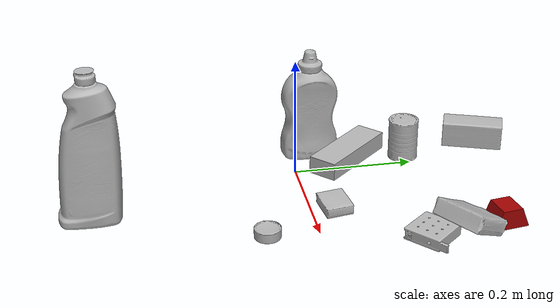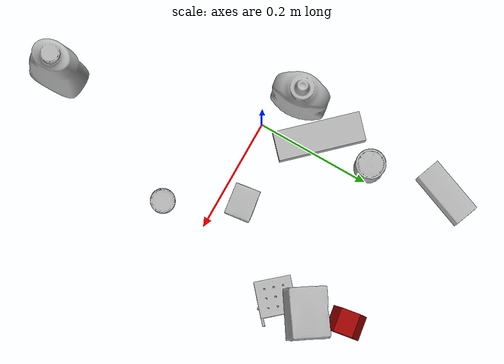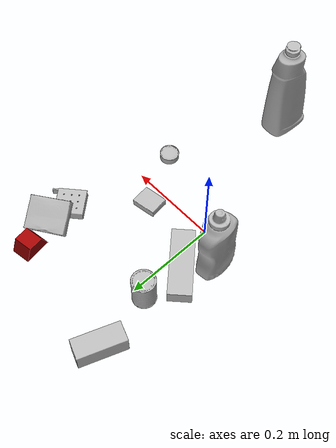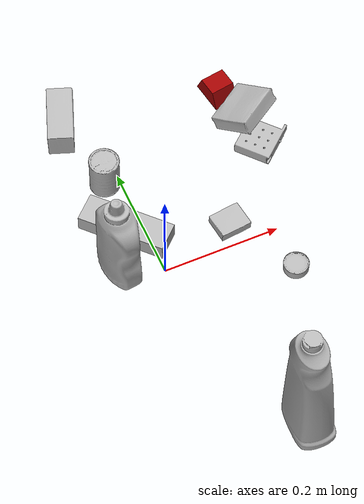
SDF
<sdf version="1.4">
  <world name="default">
    <light name="light1" type="point">
      <pose>0 0 1 0 0 0</pose>
      <diffuse>3 3 3 1</diffuse>
      <specular>3 3 3 1</specular>
    </light>
    <light name="light2" type="point">
      <pose>0 0.5 2 0 0 0</pose>
      <diffuse>1 1 1 1</diffuse>
      <specular>1 1 1 1</specular>
    </light>
    <light name="light3" type="point">
      <pose>0 0.5 2 0 0 0</pose>
      <diffuse>3 3 3 1</diffuse>
      <specular>3 3 3 1</specular>
    </light>
    <scene>
      <ambient>0.7 0.7 0.7</ambient>
    </scene>
    <model name="bottle1">
      <link name="link_bottle1">
        <collision name="default">
          <geometry>
            <mesh>
              <uri>model://mustard_bottle/collision_meshes/collision.obj</uri>
              <scale>1.0 1.0 1.0</scale>
            </mesh>
          </geometry>
          <surface>
            <friction>
              <ode>
                <mu>0.5</mu>
                <mu2>0.5</mu2>
              </ode>
            </friction>
          <contact>
        <ode>
            <max_vel>0</max_vel>
            <min_depth>0.0001</min_depth>
            <kp>1e8</kp>
        </ode>
    </contact></surface>
        </collision>
        <visual name="default">
          <geometry>
            <mesh>
              <uri>model://mustard_bottle/visual_meshes/visual.dae</uri>
              <scale>1.0 1.0 1.0</scale>
            </mesh>
          </geometry>
        </visual>
        <inertial>
          <mass>0.6762011647224426</mass>
          <pose>0.0005032454500906169 -0.00015647402324248105 -0.0174757931381464 0.0004182330054410876 0.0009465793907204819 0.02485376893997312</pose>
          <inertia>
            <ixx>0.001877718</ixx>
            <iyy>0.0016475386</iyy>
            <izz>0.0004948735</izz>
            <ixy>0</ixy>
            <ixz>0</ixz>
            <iyz>0</iyz>
          </inertia>
        </inertial>
      </link>
      <pose>-0.06623859703540802 0.03632136434316635 0.09583088755607605 -0.012050455536875048 -0.004889908046442219 0.10854078324993867</pose>
    </model>
    <model name="bottle2">
      <link name="link_bottle2">
        <collision name="default">
          <geometry>
            <mesh>
              <uri>model://bleach_cleanser/collision_meshes/collision.obj</uri>
              <scale>1.0 1.0 1.0</scale>
            </mesh>
          </geometry>
          <surface>
            <friction>
              <ode>
                <mu>0.5</mu>
                <mu2>0.5</mu2>
              </ode>
            </friction>
          <contact>
        <ode>
            <max_vel>0</max_vel>
            <min_depth>0.0001</min_depth>
            <kp>1e8</kp>
        </ode>
    </contact></surface>
        </collision>
        <visual name="default">
          <geometry>
            <mesh>
              <uri>model://bleach_cleanser/visual_meshes/visual.dae</uri>
              <scale>1.0 1.0 1.0</scale>
            </mesh>
          </geometry>
        </visual>
        <inertial>
          <mass>1.3947629928588867</mass>
          <pose>0.00012193183647468686 0.0037838828284293413 -0.02442161738872528 -0.07381670616230765 0.000420115363335565 -0.006875068774372656</pose>
          <inertia>
            <ixx>0.0067885136</ixx>
            <iyy>0.006325901</iyy>
            <izz>0.0011606595</izz>
            <ixy>0</ixy>
            <ixz>0</ixz>
            <iyz>0</iyz>
          </inertia>
        </inertial>
      </link>
      <pose>0.0926600769162178 -0.3404666483402252 0.12578415870666504 -0.00019979194843676323 1.6870971717525854e-05 -0.01908757723558795</pose>
    </model>
    <model name="toy1">
      <link name="link_toy1">
        <collision name="default">
          <geometry>
            <mesh>
              <uri>model://nine_hole_peg_test/collision_meshes/collision.obj</uri>
              <scale>0.5 0.5 0.5</scale>
            </mesh>
          </geometry>
          <surface>
            <friction>
              <ode>
                <mu>0.5</mu>
                <mu2>0.5</mu2>
              </ode>
            </friction>
          <contact>
        <ode>
            <max_vel>0</max_vel>
            <min_depth>0.0001</min_depth>
            <kp>1e8</kp>
        </ode>
    </contact></surface>
        </collision>
        <visual name="default">
          <geometry>
            <mesh>
              <uri>model://nine_hole_peg_test/visual_meshes/visual.dae</uri>
              <scale>0.5 0.5 0.5</scale>
            </mesh>
          </geometry>
        </visual>
        <inertial>
          <mass>0.11556825786828995</mass>
          <pose>-0.0023086932487785816 -0.004823807626962662 1.3230343029135838e-05 -0.0014666797633517714 0.0007194158879745651 -0.6342419016734399</pose>
          <inertia>
            <ixx>4.5177487e-05</ixx>
            <iyy>4.2181746e-05</iyy>
            <izz>7.9164296e-05</izz>
            <ixy>0</ixy>
            <ixz>0</ixz>
            <iyz>0</iyz>
          </inertia>
        </inertial>
      </link>
      <pose>0.24885007739067078 0.16573257744312286 0.010386030189692974 -2.8008369363469484e-05 -6.9041297381515086e-06 -0.8507946891102821</pose>
    </model>
    <model name="toy2">
      <link name="link_toy2">
        <collision name="default">
          <geometry>
            <mesh>
              <uri>model://prism/collision_meshes/collision.obj</uri>
              <scale>0.5 0.5 0.5</scale>
            </mesh>
          </geometry>
          <surface>
            <friction>
              <ode>
                <mu>0.5</mu>
                <mu2>0.5</mu2>
              </ode>
            </friction>
          <contact>
        <ode>
            <max_vel>0</max_vel>
            <min_depth>0.0001</min_depth>
            <kp>1e8</kp>
        </ode>
    </contact></surface>
        </collision>
        <visual name="default">
          <geometry>
            <mesh>
              <uri>model://prism/visual_meshes/visual.dae</uri>
              <scale>0.5 0.5 0.5</scale>
            </mesh>
          </geometry>
        </visual>
        <inertial>
          <mass>0.033433690667152405</mass>
          <pose>-4.9267986469203606e-05 -2.480786349678965e-07 -0.001693455153144896 0.0 0.00655918030046738 0.0</pose>
          <inertia>
            <ixx>7.543374e-06</ixx>
            <iyy>9.116264e-06</iyy>
            <izz>1.1166334e-05</izz>
            <ixy>0</ixy>
            <ixz>0</ixz>
            <iyz>0</iyz>
          </inertia>
        </inertial>
      </link>
      <pose>0.22229990363121033 0.28906649351119995 0.01608497090637684 3.557934544638975e-06 -1.4512866784811982e-05 -1.4140076998262208</pose>
    </model>
    <model name="can1">
      <link name="link_can1">
        <collision name="default">
          <geometry>
            <mesh>
              <uri>model://master_chef_can/collision_meshes/collision.obj</uri>
              <scale>0.5 0.5 0.5</scale>
            </mesh>
          </geometry>
          <surface>
            <friction>
              <ode>
                <mu>0.5</mu>
                <mu2>0.5</mu2>
              </ode>
            </friction>
          <contact>
        <ode>
            <max_vel>0</max_vel>
            <min_depth>0.0001</min_depth>
            <kp>1e8</kp>
        </ode>
    </contact></surface>
        </collision>
        <visual name="default">
          <geometry>
            <mesh>
              <uri>model://master_chef_can/visual_meshes/visual.dae</uri>
              <scale>0.5 0.5 0.5</scale>
            </mesh>
          </geometry>
        </visual>
        <inertial>
          <mass>0.10766725987195969</mass>
          <pose>-4.661964703700505e-05 1.3926853625889635e-07 -5.079878610558808e-05 -0.0017995160150511523 0.000647916474058074 -0.6102670332280266</pose>
          <inertia>
            <ixx>6.319339e-05</ixx>
            <iyy>6.2728286e-05</iyy>
            <izz>3.491918e-05</izz>
            <ixy>0</ixy>
            <ixz>0</ixz>
            <iyz>0</iyz>
          </inertia>
        </inertial>
      </link>
      <pose>-0.024662157520651817 0.1937321126461029 0.03530199080705643 -1.498924680314619e-06 -8.738588856237291e-07 -2.442923082499266</pose>
    </model>
    <model name="can2">
      <link name="link_can2">
        <collision name="default">
          <geometry>
            <mesh>
              <uri>model://tuna_fish_can/collision_meshes/collision.obj</uri>
              <scale>0.5 0.5 0.5</scale>
            </mesh>
          </geometry>
          <surface>
            <friction>
              <ode>
                <mu>0.5</mu>
                <mu2>0.5</mu2>
              </ode>
            </friction>
          <contact>
        <ode>
            <max_vel>0</max_vel>
            <min_depth>0.0001</min_depth>
            <kp>1e8</kp>
        </ode>
    </contact></surface>
        </collision>
        <visual name="default">
          <geometry>
            <mesh>
              <uri>model://tuna_fish_can/visual_meshes/visual.dae</uri>
              <scale>0.5 0.5 0.5</scale>
            </mesh>
          </geometry>
        </visual>
        <inertial>
          <mass>0.02740846574306488</mass>
          <pose>-2.0361561837489717e-05 -7.256384378706571e-06 -0.0005269024986773729 -0.0017944791545750336 0.000171617609773777 0.24054039995463303</pose>
          <inertia>
            <ixx>3.7056664e-06</ixx>
            <iyy>3.6902204e-06</iyy>
            <izz>6.3409243e-06</izz>
            <ixy>0</ixy>
            <ixz>0</ixz>
            <iyz>0</iyz>
          </inertia>
        </inertial>
      </link>
      <pose>0.1960441768169403 -0.08038955926895142 0.008520003408193588 -1.3706575697511487e-09 1.7458580898869302e-08 2.456946730238011</pose>
    </model>
    <model name="box1">
      <link name="link_box1">
        <collision name="default">
          <geometry>
            <mesh>
              <uri>model://gelatin_box/collision_meshes/collision.obj</uri>
              <scale>1.0 1.0 1.0</scale>
            </mesh>
          </geometry>
          <surface>
            <friction>
              <ode>
                <mu>0.5</mu>
                <mu2>0.5</mu2>
              </ode>
            </friction>
          <contact>
        <ode>
            <max_vel>0</max_vel>
            <min_depth>0.0001</min_depth>
            <kp>1e8</kp>
        </ode>
    </contact></surface>
        </collision>
        <visual name="default">
          <geometry>
            <mesh>
              <uri>model://gelatin_box/visual_meshes/visual.dae</uri>
              <scale>1.0 1.0 1.0</scale>
            </mesh>
          </geometry>
        </visual>
        <inertial>
          <mass>0.1693437397480011</mass>
          <pose>0.0004319618456065655 0.00011156872642459348 -0.00036403213744051754 -0.0010503721973280913 -0.004755817758053359 0.01644055760876268</pose>
          <inertia>
            <ixx>0.00011954286</ixx>
            <iyy>8.538885e-05</iyy>
            <izz>0.0001819709</izz>
            <ixy>0</ixy>
            <ixz>0</ixz>
            <iyz>0</iyz>
          </inertia>
        </inertial>
      </link>
      <pose>0.24155832827091217 0.22334830462932587 0.02898578718304634 0.0068339275958063175 0.4662384621648314 2.1582084132953563</pose>
    </model>
    <model name="box2">
      <link name="link_box2">
        <collision name="default">
          <geometry>
            <mesh>
              <uri>model://pudding_box/collision_meshes/collision.obj</uri>
              <scale>0.5 0.5 0.5</scale>
            </mesh>
          </geometry>
          <surface>
            <friction>
              <ode>
                <mu>0.5</mu>
                <mu2>0.5</mu2>
              </ode>
            </friction>
          <contact>
        <ode>
            <max_vel>0</max_vel>
            <min_depth>0.0001</min_depth>
            <kp>1e8</kp>
        </ode>
    </contact></surface>
        </collision>
        <visual name="default">
          <geometry>
            <mesh>
              <uri>model://pudding_box/visual_meshes/visual.dae</uri>
              <scale>0.5 0.5 0.5</scale>
            </mesh>
          </geometry>
        </visual>
        <inertial>
          <mass>0.04695427790284157</mass>
          <pose>0.00024474109522998333 0.00040339428232982755 -0.0002594413817860186 0.005213102262859105 -0.0066037982576109796 0.020079825159299278</pose>
          <inertia>
            <ixx>1.3269848e-05</ixx>
            <iyy>8.9280475e-06</iyy>
            <izz>1.95964e-05</izz>
            <ixy>0</ixy>
            <ixz>0</ixz>
            <iyz>0</iyz>
          </inertia>
        </inertial>
      </link>
      <pose>0.13211816549301147 0.03779992088675499 0.009862901642918587 0.02234849229579208 -0.011391772892544045 1.7037497390531624</pose>
    </model>
    <model name="box3">
      <link name="link_box3">
        <collision name="default">
          <geometry>
            <mesh>
              <uri>model://wood_block/collision_meshes/collision.obj</uri>
              <scale>0.5 0.5 0.5</scale>
            </mesh>
          </geometry>
          <surface>
            <friction>
              <ode>
                <mu>0.5</mu>
                <mu2>0.5</mu2>
              </ode>
            </friction>
          <contact>
        <ode>
            <max_vel>0</max_vel>
            <min_depth>0.0001</min_depth>
            <kp>1e8</kp>
        </ode>
    </contact></surface>
        </collision>
        <visual name="default">
          <geometry>
            <mesh>
              <uri>model://wood_block/visual_meshes/visual.dae</uri>
              <scale>0.5 0.5 0.5</scale>
            </mesh>
          </geometry>
        </visual>
        <inertial>
          <mass>0.2591375410556793</mass>
          <pose>-2.9066577553749084e-06 -0.00028540476341731846 0.00013204291462898254 -0.05221026556657302 -0.005192695801982805 -0.006861378038707315</pose>
          <inertia>
            <ixx>8.669131e-05</ixx>
            <iyy>0.00027385785</iyy>
            <izz>0.00027283354</izz>
            <ixy>0</ixy>
            <ixz>0</ixz>
            <iyz>0</iyz>
          </inertia>
        </inertial>
      </link>
      <pose>-0.04880988970398903 0.32820895314216614 0.0226292684674263 -0.005208627456959667 0.005718736592205574 1.212693489171813</pose>
    </model>
    <model name="box4">
      <link name="link_box4">
        <collision name="default">
          <geometry>
            <mesh>
              <uri>model://jenga/collision_meshes/collision.obj</uri>
              <scale>1.0 1.0 1.0</scale>
            </mesh>
          </geometry>
          <surface>
            <friction>
              <ode>
                <mu>0.5</mu>
                <mu2>0.5</mu2>
              </ode>
            </friction>
          <contact>
        <ode>
            <max_vel>0</max_vel>
            <min_depth>0.0001</min_depth>
            <kp>1e8</kp>
        </ode>
    </contact></surface>
        </collision>
        <visual name="default">
          <geometry>
            <mesh>
              <uri>model://jenga/visual_meshes/visual.dae</uri>
              <scale>1.0 1.0 1.0</scale>
            </mesh>
          </geometry>
        </visual>
        <inertial>
          <mass>0.14610815048217773</mass>
          <pose>-2.502855807051674e-07 -0.00010250010382151231 -4.092339804628864e-05 0.0 -7.342155186052628e-07 0.0</pose>
          <inertia>
            <ixx>4.043167e-05</ixx>
            <iyy>0.0002739639</iyy>
            <izz>0.00029247976</izz>
            <ixy>0</ixy>
            <ixz>0</ixz>
            <iyz>0</iyz>
          </inertia>
        </inertial>
      </link>
      <pose>-0.027922257781028748 0.09535602480173111 0.014999994076788425 -1.7935373891010687e-09 1.169626607804564e-09 -0.8185573517288263</pose>
    </model>
  <physics type="ode">
      <max_contacts>50</max_contacts>
      <ode>
        <solver>
          <type>quick</type>
          <iters>75</iters>
        </solver>
        <constraints>
          <contact_max_correcting_vel>0</contact_max_correcting_vel>
          <contact_surface_layer>0</contact_surface_layer>
        </constraints>
      </ode>
    </physics></world>
</sdf>
